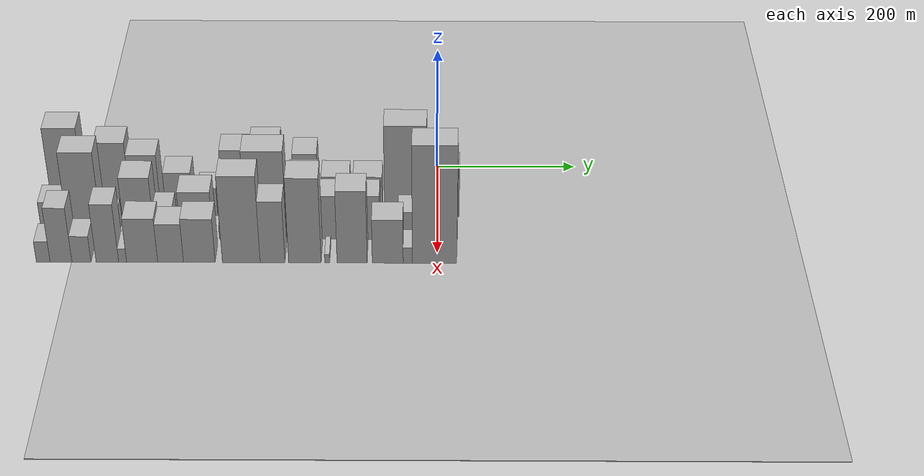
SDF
<sdf version="1.6">
 <world name="default">
  <include><name>ground_plane_1</name><uri>model://HANNAS_ground_plane</uri></include>
  <include>
   <name>ground_plane_2</name>
   <uri>model://HANNAS_ground_plane</uri>
   <pose>100 0 0  0 0 0</pose>
  </include>
  <model name="building_1">
   <static>1</static>
   <pose>100.0000 -517.8129 0 0.000000 0.000000 0.000000</pose>
   <link name="link">
    <pose>0 0 75.00 0 0 0</pose>
    <collision name="collision"><geometry><box><size>40.0000 46.3742 150.0000</size></box></geometry></collision>
    <visual name="visual">
     <cast_shadows>0</cast_shadows>
     <geometry><box><size>40.0000 46.3742 150.0000</size></box></geometry>
     <material>
      <script>
       <uri>model://HANNAS_wall/materials/scripts</uri>
       <uri>model://HANNAS_wall/materials/textures</uri>
       <name>vrc/HANNAS_wall</name>
      </script>
     </material>
    </visual>
   </link>
  </model>
  <model name="building_2">
   <static>1</static>
   <pose>100.0000 -488.5571 0 0.000000 0.000000 0.000000</pose>
   <link name="link">
    <pose>0 0 13.50 0 0 0</pose>
    <collision name="collision"><geometry><box><size>40.0000 12.1373 27.0000</size></box></geometry></collision>
    <visual name="visual">
     <cast_shadows>0</cast_shadows>
     <geometry><box><size>40.0000 12.1373 27.0000</size></box></geometry>
     <material>
      <script>
       <uri>model://HANNAS_wall/materials/scripts</uri>
       <uri>model://HANNAS_wall/materials/textures</uri>
       <name>vrc/HANNAS_wall</name>
      </script>
     </material>
    </visual>
   </link>
  </model>
  <model name="building_3">
   <static>1</static>
   <pose>100.0000 -452.1296 0 0.000000 0.000000 0.000000</pose>
   <link name="link">
    <pose>0 0 63.00 0 0 0</pose>
    <collision name="collision"><geometry><box><size>40.0000 42.7177 126.0000</size></box></geometry></collision>
    <visual name="visual">
     <cast_shadows>0</cast_shadows>
     <geometry><box><size>40.0000 42.7177 126.0000</size></box></geometry>
     <material>
      <script>
       <uri>model://HANNAS_wall/materials/scripts</uri>
       <uri>model://HANNAS_wall/materials/textures</uri>
       <name>vrc/HANNAS_wall</name>
      </script>
     </material>
    </visual>
   </link>
  </model>
  <model name="building_4">
   <static>1</static>
   <pose>100.0000 -409.7963 0 0.000000 0.000000 0.000000</pose>
   <link name="link">
    <pose>0 0 52.50 0 0 0</pose>
    <collision name="collision"><geometry><box><size>40.0000 41.9489 105.0000</size></box></geometry></collision>
    <visual name="visual">
     <cast_shadows>0</cast_shadows>
     <geometry><box><size>40.0000 41.9489 105.0000</size></box></geometry>
     <material>
      <script>
       <uri>model://HANNAS_wall/materials/scripts</uri>
       <uri>model://HANNAS_wall/materials/textures</uri>
       <name>vrc/HANNAS_wall</name>
      </script>
     </material>
    </visual>
   </link>
  </model>
  <model name="building_5">
   <static>1</static>
   <pose>100.0000 -362.7776 0 0.000000 0.000000 0.000000</pose>
   <link name="link">
    <pose>0 0 37.50 0 0 0</pose>
    <collision name="collision"><geometry><box><size>40.0000 38.0886 75.0000</size></box></geometry></collision>
    <visual name="visual">
     <cast_shadows>0</cast_shadows>
     <geometry><box><size>40.0000 38.0886 75.0000</size></box></geometry>
     <material>
      <script>
       <uri>model://HANNAS_wall/materials/scripts</uri>
       <uri>model://HANNAS_wall/materials/textures</uri>
       <name>vrc/HANNAS_wall</name>
      </script>
     </material>
    </visual>
   </link>
  </model>
  <model name="building_6">
   <static>1</static>
   <pose>100.0000 -322.4635 0 0.000000 0.000000 0.000000</pose>
   <link name="link">
    <pose>0 0 24.00 0 0 0</pose>
    <collision name="collision"><geometry><box><size>40.0000 26.5395 48.0000</size></box></geometry></collision>
    <visual name="visual">
     <cast_shadows>0</cast_shadows>
     <geometry><box><size>40.0000 26.5395 48.0000</size></box></geometry>
     <material>
      <script>
       <uri>model://HANNAS_wall/materials/scripts</uri>
       <uri>model://HANNAS_wall/materials/textures</uri>
       <name>vrc/HANNAS_wall</name>
      </script>
     </material>
    </visual>
   </link>
  </model>
  <model name="building_7">
   <static>1</static>
   <pose>100.0000 -280.0874 0 0.000000 0.000000 0.000000</pose>
   <link name="link">
    <pose>0 0 57.00 0 0 0</pose>
    <collision name="collision"><geometry><box><size>40.0000 42.2128 114.0000</size></box></geometry></collision>
    <visual name="visual">
     <cast_shadows>0</cast_shadows>
     <geometry><box><size>40.0000 42.2128 114.0000</size></box></geometry>
     <material>
      <script>
       <uri>model://HANNAS_wall/materials/scripts</uri>
       <uri>model://HANNAS_wall/materials/textures</uri>
       <name>vrc/HANNAS_wall</name>
      </script>
     </material>
    </visual>
   </link>
  </model>
  <model name="building_8">
   <static>1</static>
   <pose>100.0000 -238.3081 0 0.000000 0.000000 0.000000</pose>
   <link name="link">
    <pose>0 0 63.00 0 0 0</pose>
    <collision name="collision"><geometry><box><size>40.0000 41.3457 126.0000</size></box></geometry></collision>
    <visual name="visual">
     <cast_shadows>0</cast_shadows>
     <geometry><box><size>40.0000 41.3457 126.0000</size></box></geometry>
     <material>
      <script>
       <uri>model://HANNAS_wall/materials/scripts</uri>
       <uri>model://HANNAS_wall/materials/textures</uri>
       <name>vrc/HANNAS_wall</name>
      </script>
     </material>
    </visual>
   </link>
  </model>
  <model name="building_9">
   <static>1</static>
   <pose>100.0000 -210.3864 0 0.000000 0.000000 0.000000</pose>
   <link name="link">
    <pose>0 0 9.00 0 0 0</pose>
    <collision name="collision"><geometry><box><size>40.0000 8.4978 18.0000</size></box></geometry></collision>
    <visual name="visual">
     <cast_shadows>0</cast_shadows>
     <geometry><box><size>40.0000 8.4978 18.0000</size></box></geometry>
     <material>
      <script>
       <uri>model://HANNAS_wall/materials/scripts</uri>
       <uri>model://HANNAS_wall/materials/textures</uri>
       <name>vrc/HANNAS_wall</name>
      </script>
     </material>
    </visual>
   </link>
  </model>
  <model name="building_10">
   <static>1</static>
   <pose>100.0000 -184.0744 0 0.000000 0.000000 0.000000</pose>
   <link name="link">
    <pose>0 0 54.00 0 0 0</pose>
    <collision name="collision"><geometry><box><size>40.0000 34.1261 108.0000</size></box></geometry></collision>
    <visual name="visual">
     <cast_shadows>0</cast_shadows>
     <geometry><box><size>40.0000 34.1261 108.0000</size></box></geometry>
     <material>
      <script>
       <uri>model://HANNAS_wall/materials/scripts</uri>
       <uri>model://HANNAS_wall/materials/textures</uri>
       <name>vrc/HANNAS_wall</name>
      </script>
     </material>
    </visual>
   </link>
  </model>
  <model name="building_11">
   <static>1</static>
   <pose>100.0000 -142.2637 0 0.000000 0.000000 0.000000</pose>
   <link name="link">
    <pose>0 0 34.50 0 0 0</pose>
    <collision name="collision"><geometry><box><size>40.0000 39.4953 69.0000</size></box></geometry></collision>
    <visual name="visual">
     <cast_shadows>0</cast_shadows>
     <geometry><box><size>40.0000 39.4953 69.0000</size></box></geometry>
     <material>
      <script>
       <uri>model://HANNAS_wall/materials/scripts</uri>
       <uri>model://HANNAS_wall/materials/textures</uri>
       <name>vrc/HANNAS_wall</name>
      </script>
     </material>
    </visual>
   </link>
  </model>
  <model name="building_12">
   <static>1</static>
   <pose>100.0000 -97.3337 0 0.000000 0.000000 0.000000</pose>
   <link name="link">
    <pose>0 0 34.50 0 0 0</pose>
    <collision name="collision"><geometry><box><size>40.0000 40.3648 69.0000</size></box></geometry></collision>
    <visual name="visual">
     <cast_shadows>0</cast_shadows>
     <geometry><box><size>40.0000 40.3648 69.0000</size></box></geometry>
     <material>
      <script>
       <uri>model://HANNAS_wall/materials/scripts</uri>
       <uri>model://HANNAS_wall/materials/textures</uri>
       <name>vrc/HANNAS_wall</name>
      </script>
     </material>
    </visual>
   </link>
  </model>
  <model name="building_13">
   <static>1</static>
   <pose>100.0000 -44.5893 0 0.000000 0.000000 0.000000</pose>
   <link name="link">
    <pose>0 0 78.00 0 0 0</pose>
    <collision name="collision"><geometry><box><size>40.0000 59.1241 156.0000</size></box></geometry></collision>
    <visual name="visual">
     <cast_shadows>0</cast_shadows>
     <geometry><box><size>40.0000 59.1241 156.0000</size></box></geometry>
     <material>
      <script>
       <uri>model://HANNAS_wall/materials/scripts</uri>
       <uri>model://HANNAS_wall/materials/textures</uri>
       <name>vrc/HANNAS_wall</name>
      </script>
     </material>
    </visual>
   </link>
  </model>
  <model name="building_14">
   <static>1</static>
   <pose>100.0000 7.8400 0 0.000000 0.000000 0.000000</pose>
   <link name="link">
    <pose>0 0 42.00 0 0 0</pose>
    <collision name="collision"><geometry><box><size>40.0000 45.7345 84.0000</size></box></geometry></collision>
    <visual name="visual">
     <cast_shadows>0</cast_shadows>
     <geometry><box><size>40.0000 45.7345 84.0000</size></box></geometry>
     <material>
      <script>
       <uri>model://HANNAS_wall/materials/scripts</uri>
       <uri>model://HANNAS_wall/materials/textures</uri>
       <name>vrc/HANNAS_wall</name>
      </script>
     </material>
    </visual>
   </link>
  </model>
  <model name="building_31">
   <static>1</static>
   <pose>152.0000 -529.8359 0 0.000000 0.000000 0.000000</pose>
   <link name="link">
    <pose>0 0 31.50 0 0 0</pose>
    <collision name="collision"><geometry><box><size>40.0000 36.3281 63.0000</size></box></geometry></collision>
    <visual name="visual">
     <cast_shadows>0</cast_shadows>
     <geometry><box><size>40.0000 36.3281 63.0000</size></box></geometry>
     <material>
      <script>
       <uri>model://HANNAS_wall/materials/scripts</uri>
       <uri>model://HANNAS_wall/materials/textures</uri>
       <name>vrc/HANNAS_wall</name>
      </script>
     </material>
    </visual>
   </link>
  </model>
  <model name="building_32">
   <static>1</static>
   <pose>152.0000 -488.1662 0 0.000000 0.000000 0.000000</pose>
   <link name="link">
    <pose>0 0 73.50 0 0 0</pose>
    <collision name="collision"><geometry><box><size>40.0000 47.0113 147.0000</size></box></geometry></collision>
    <visual name="visual">
     <cast_shadows>0</cast_shadows>
     <geometry><box><size>40.0000 47.0113 147.0000</size></box></geometry>
     <material>
      <script>
       <uri>model://HANNAS_wall/materials/scripts</uri>
       <uri>model://HANNAS_wall/materials/textures</uri>
       <name>vrc/HANNAS_wall</name>
      </script>
     </material>
    </visual>
   </link>
  </model>
  <model name="building_33">
   <static>1</static>
   <pose>152.0000 -453.7050 0 0.000000 0.000000 0.000000</pose>
   <link name="link">
    <pose>0 0 19.50 0 0 0</pose>
    <collision name="collision"><geometry><box><size>40.0000 21.9111 39.0000</size></box></geometry></collision>
    <visual name="visual">
     <cast_shadows>0</cast_shadows>
     <geometry><box><size>40.0000 21.9111 39.0000</size></box></geometry>
     <material>
      <script>
       <uri>model://HANNAS_wall/materials/scripts</uri>
       <uri>model://HANNAS_wall/materials/textures</uri>
       <name>vrc/HANNAS_wall</name>
      </script>
     </material>
    </visual>
   </link>
  </model>
  <model name="building_34">
   <static>1</static>
   <pose>152.0000 -413.0105 0 0.000000 0.000000 0.000000</pose>
   <link name="link">
    <pose>0 0 52.50 0 0 0</pose>
    <collision name="collision"><geometry><box><size>40.0000 41.4778 105.0000</size></box></geometry></collision>
    <visual name="visual">
     <cast_shadows>0</cast_shadows>
     <geometry><box><size>40.0000 41.4778 105.0000</size></box></geometry>
     <material>
      <script>
       <uri>model://HANNAS_wall/materials/scripts</uri>
       <uri>model://HANNAS_wall/materials/textures</uri>
       <name>vrc/HANNAS_wall</name>
      </script>
     </material>
    </visual>
   </link>
  </model>
  <model name="building_35">
   <static>1</static>
   <pose>152.0000 -378.6980 0 0.000000 0.000000 0.000000</pose>
   <link name="link">
    <pose>0 0 25.50 0 0 0</pose>
    <collision name="collision"><geometry><box><size>40.0000 27.1472 51.0000</size></box></geometry></collision>
    <visual name="visual">
     <cast_shadows>0</cast_shadows>
     <geometry><box><size>40.0000 27.1472 51.0000</size></box></geometry>
     <material>
      <script>
       <uri>model://HANNAS_wall/materials/scripts</uri>
       <uri>model://HANNAS_wall/materials/textures</uri>
       <name>vrc/HANNAS_wall</name>
      </script>
     </material>
    </visual>
   </link>
  </model>
  <model name="building_36">
   <static>1</static>
   <pose>152.0000 -333.7267 0 0.000000 0.000000 0.000000</pose>
   <link name="link">
    <pose>0 0 40.50 0 0 0</pose>
    <collision name="collision"><geometry><box><size>40.0000 44.7954 81.0000</size></box></geometry></collision>
    <visual name="visual">
     <cast_shadows>0</cast_shadows>
     <geometry><box><size>40.0000 44.7954 81.0000</size></box></geometry>
     <material>
      <script>
       <uri>model://HANNAS_wall/materials/scripts</uri>
       <uri>model://HANNAS_wall/materials/textures</uri>
       <name>vrc/HANNAS_wall</name>
      </script>
     </material>
    </visual>
   </link>
  </model>
  <model name="building_37">
   <static>1</static>
   <pose>152.0000 -297.2782 0 0.000000 0.000000 0.000000</pose>
   <link name="link">
    <pose>0 0 12.00 0 0 0</pose>
    <collision name="collision"><geometry><box><size>40.0000 10.1018 24.0000</size></box></geometry></collision>
    <visual name="visual">
     <cast_shadows>0</cast_shadows>
     <geometry><box><size>40.0000 10.1018 24.0000</size></box></geometry>
     <material>
      <script>
       <uri>model://HANNAS_wall/materials/scripts</uri>
       <uri>model://HANNAS_wall/materials/textures</uri>
       <name>vrc/HANNAS_wall</name>
      </script>
     </material>
    </visual>
   </link>
  </model>
  <model name="building_38">
   <static>1</static>
   <pose>152.0000 -284.5666 0 0.000000 0.000000 0.000000</pose>
   <link name="link">
    <pose>0 0 15.00 0 0 0</pose>
    <collision name="collision"><geometry><box><size>40.0000 15.3213 30.0000</size></box></geometry></collision>
    <visual name="visual">
     <cast_shadows>0</cast_shadows>
     <geometry><box><size>40.0000 15.3213 30.0000</size></box></geometry>
     <material>
      <script>
       <uri>model://HANNAS_wall/materials/scripts</uri>
       <uri>model://HANNAS_wall/materials/textures</uri>
       <name>vrc/HANNAS_wall</name>
      </script>
     </material>
    </visual>
   </link>
  </model>
  <model name="building_39">
   <static>1</static>
   <pose>152.0000 -271.1586 0 0.000000 0.000000 0.000000</pose>
   <link name="link">
    <pose>0 0 12.00 0 0 0</pose>
    <collision name="collision"><geometry><box><size>40.0000 11.4947 24.0000</size></box></geometry></collision>
    <visual name="visual">
     <cast_shadows>0</cast_shadows>
     <geometry><box><size>40.0000 11.4947 24.0000</size></box></geometry>
     <material>
      <script>
       <uri>model://HANNAS_wall/materials/scripts</uri>
       <uri>model://HANNAS_wall/materials/textures</uri>
       <name>vrc/HANNAS_wall</name>
      </script>
     </material>
    </visual>
   </link>
  </model>
  <model name="building_40">
   <static>1</static>
   <pose>152.0000 -237.2318 0 0.000000 0.000000 0.000000</pose>
   <link name="link">
    <pose>0 0 75.00 0 0 0</pose>
    <collision name="collision"><geometry><box><size>40.0000 56.3590 150.0000</size></box></geometry></collision>
    <visual name="visual">
     <cast_shadows>0</cast_shadows>
     <geometry><box><size>40.0000 56.3590 150.0000</size></box></geometry>
     <material>
      <script>
       <uri>model://HANNAS_wall/materials/scripts</uri>
       <uri>model://HANNAS_wall/materials/textures</uri>
       <name>vrc/HANNAS_wall</name>
      </script>
     </material>
    </visual>
   </link>
  </model>
  <model name="building_41">
   <static>1</static>
   <pose>152.0000 -183.8900 0 0.000000 0.000000 0.000000</pose>
   <link name="link">
    <pose>0 0 54.00 0 0 0</pose>
    <collision name="collision"><geometry><box><size>40.0000 38.3245 108.0000</size></box></geometry></collision>
    <visual name="visual">
     <cast_shadows>0</cast_shadows>
     <geometry><box><size>40.0000 38.3245 108.0000</size></box></geometry>
     <material>
      <script>
       <uri>model://HANNAS_wall/materials/scripts</uri>
       <uri>model://HANNAS_wall/materials/textures</uri>
       <name>vrc/HANNAS_wall</name>
      </script>
     </material>
    </visual>
   </link>
  </model>
  <model name="building_42">
   <static>1</static>
   <pose>152.0000 -144.3344 0 0.000000 0.000000 0.000000</pose>
   <link name="link">
    <pose>0 0 37.50 0 0 0</pose>
    <collision name="collision"><geometry><box><size>40.0000 40.7866 75.0000</size></box></geometry></collision>
    <visual name="visual">
     <cast_shadows>0</cast_shadows>
     <geometry><box><size>40.0000 40.7866 75.0000</size></box></geometry>
     <material>
      <script>
       <uri>model://HANNAS_wall/materials/scripts</uri>
       <uri>model://HANNAS_wall/materials/textures</uri>
       <name>vrc/HANNAS_wall</name>
      </script>
     </material>
    </visual>
   </link>
  </model>
  <model name="building_43">
   <static>1</static>
   <pose>152.0000 -101.8310 0 0.000000 0.000000 0.000000</pose>
   <link name="link">
    <pose>0 0 37.50 0 0 0</pose>
    <collision name="collision"><geometry><box><size>40.0000 44.2203 75.0000</size></box></geometry></collision>
    <visual name="visual">
     <cast_shadows>0</cast_shadows>
     <geometry><box><size>40.0000 44.2203 75.0000</size></box></geometry>
     <material>
      <script>
       <uri>model://HANNAS_wall/materials/scripts</uri>
       <uri>model://HANNAS_wall/materials/textures</uri>
       <name>vrc/HANNAS_wall</name>
      </script>
     </material>
    </visual>
   </link>
  </model>
  <model name="building_44">
   <static>1</static>
   <pose>152.0000 -75.3152 0 0.000000 0.000000 0.000000</pose>
   <link name="link">
    <pose>0 0 9.00 0 0 0</pose>
    <collision name="collision"><geometry><box><size>40.0000 8.8113 18.0000</size></box></geometry></collision>
    <visual name="visual">
     <cast_shadows>0</cast_shadows>
     <geometry><box><size>40.0000 8.8113 18.0000</size></box></geometry>
     <material>
      <script>
       <uri>model://HANNAS_wall/materials/scripts</uri>
       <uri>model://HANNAS_wall/materials/textures</uri>
       <name>vrc/HANNAS_wall</name>
      </script>
     </material>
    </visual>
   </link>
  </model>
  <model name="building_45">
   <static>1</static>
   <pose>152.0000 -62.4383 0 0.000000 0.000000 0.000000</pose>
   <link name="link">
    <pose>0 0 15.00 0 0 0</pose>
    <collision name="collision"><geometry><box><size>40.0000 16.9426 30.0000</size></box></geometry></collision>
    <visual name="visual">
     <cast_shadows>0</cast_shadows>
     <geometry><box><size>40.0000 16.9426 30.0000</size></box></geometry>
     <material>
      <script>
       <uri>model://HANNAS_wall/materials/scripts</uri>
       <uri>model://HANNAS_wall/materials/textures</uri>
       <name>vrc/HANNAS_wall</name>
      </script>
     </material>
    </visual>
   </link>
  </model>
  <model name="building_46">
   <static>1</static>
   <pose>152.0000 -41.3416 0 0.000000 0.000000 0.000000</pose>
   <link name="link">
    <pose>0 0 24.00 0 0 0</pose>
    <collision name="collision"><geometry><box><size>40.0000 25.2507 48.0000</size></box></geometry></collision>
    <visual name="visual">
     <cast_shadows>0</cast_shadows>
     <geometry><box><size>40.0000 25.2507 48.0000</size></box></geometry>
     <material>
      <script>
       <uri>model://HANNAS_wall/materials/scripts</uri>
       <uri>model://HANNAS_wall/materials/textures</uri>
       <name>vrc/HANNAS_wall</name>
      </script>
     </material>
    </visual>
   </link>
  </model>
  <model name="building_47">
   <static>1</static>
   <pose>152.0000 -22.3486 0 0.000000 0.000000 0.000000</pose>
   <link name="link">
    <pose>0 0 13.50 0 0 0</pose>
    <collision name="collision"><geometry><box><size>40.0000 12.7354 27.0000</size></box></geometry></collision>
    <visual name="visual">
     <cast_shadows>0</cast_shadows>
     <geometry><box><size>40.0000 12.7354 27.0000</size></box></geometry>
     <material>
      <script>
       <uri>model://HANNAS_wall/materials/scripts</uri>
       <uri>model://HANNAS_wall/materials/textures</uri>
       <name>vrc/HANNAS_wall</name>
      </script>
     </material>
    </visual>
   </link>
  </model>
  <model name="building_48">
   <static>1</static>
   <pose>152.0000 5.9794 0 0.000000 0.000000 0.000000</pose>
   <link name="link">
    <pose>0 0 69.00 0 0 0</pose>
    <collision name="collision"><geometry><box><size>40.0000 43.9205 138.0000</size></box></geometry></collision>
    <visual name="visual">
     <cast_shadows>0</cast_shadows>
     <geometry><box><size>40.0000 43.9205 138.0000</size></box></geometry>
     <material>
      <script>
       <uri>model://HANNAS_wall/materials/scripts</uri>
       <uri>model://HANNAS_wall/materials/textures</uri>
       <name>vrc/HANNAS_wall</name>
      </script>
     </material>
    </visual>
   </link>
  </model>
  <model name="building_65">
   <static>1</static>
   <pose>204.0000 -538.6336 0 0.000000 0.000000 0.000000</pose>
   <link name="link">
    <pose>0 0 18.00 0 0 0</pose>
    <collision name="collision"><geometry><box><size>40.0000 18.7327 36.0000</size></box></geometry></collision>
    <visual name="visual">
     <cast_shadows>0</cast_shadows>
     <geometry><box><size>40.0000 18.7327 36.0000</size></box></geometry>
     <material>
      <script>
       <uri>model://HANNAS_wall/materials/scripts</uri>
       <uri>model://HANNAS_wall/materials/textures</uri>
       <name>vrc/HANNAS_wall</name>
      </script>
     </material>
    </visual>
   </link>
  </model>
  <model name="building_66">
   <static>1</static>
   <pose>204.0000 -514.2929 0 0.000000 0.000000 0.000000</pose>
   <link name="link">
    <pose>0 0 46.50 0 0 0</pose>
    <collision name="collision"><geometry><box><size>40.0000 29.9488 93.0000</size></box></geometry></collision>
    <visual name="visual">
     <cast_shadows>0</cast_shadows>
     <geometry><box><size>40.0000 29.9488 93.0000</size></box></geometry>
     <material>
      <script>
       <uri>model://HANNAS_wall/materials/scripts</uri>
       <uri>model://HANNAS_wall/materials/textures</uri>
       <name>vrc/HANNAS_wall</name>
      </script>
     </material>
    </visual>
   </link>
  </model>
  <model name="building_67">
   <static>1</static>
   <pose>204.0000 -486.3015 0 0.000000 0.000000 0.000000</pose>
   <link name="link">
    <pose>0 0 22.50 0 0 0</pose>
    <collision name="collision"><geometry><box><size>40.0000 26.0339 45.0000</size></box></geometry></collision>
    <visual name="visual">
     <cast_shadows>0</cast_shadows>
     <geometry><box><size>40.0000 26.0339 45.0000</size></box></geometry>
     <material>
      <script>
       <uri>model://HANNAS_wall/materials/scripts</uri>
       <uri>model://HANNAS_wall/materials/textures</uri>
       <name>vrc/HANNAS_wall</name>
      </script>
     </material>
    </visual>
   </link>
  </model>
  <model name="building_68">
   <static>1</static>
   <pose>204.0000 -450.8582 0 0.000000 0.000000 0.000000</pose>
   <link name="link">
    <pose>0 0 49.50 0 0 0</pose>
    <collision name="collision"><geometry><box><size>40.0000 30.8527 99.0000</size></box></geometry></collision>
    <visual name="visual">
     <cast_shadows>0</cast_shadows>
     <geometry><box><size>40.0000 30.8527 99.0000</size></box></geometry>
     <material>
      <script>
       <uri>model://HANNAS_wall/materials/scripts</uri>
       <uri>model://HANNAS_wall/materials/textures</uri>
       <name>vrc/HANNAS_wall</name>
      </script>
     </material>
    </visual>
   </link>
  </model>
  <model name="building_69">
   <static>1</static>
   <pose>204.0000 -430.0447 0 0.000000 0.000000 0.000000</pose>
   <link name="link">
    <pose>0 0 12.00 0 0 0</pose>
    <collision name="collision"><geometry><box><size>40.0000 10.7745 24.0000</size></box></geometry></collision>
    <visual name="visual">
     <cast_shadows>0</cast_shadows>
     <geometry><box><size>40.0000 10.7745 24.0000</size></box></geometry>
     <material>
      <script>
       <uri>model://HANNAS_wall/materials/scripts</uri>
       <uri>model://HANNAS_wall/materials/textures</uri>
       <name>vrc/HANNAS_wall</name>
      </script>
     </material>
    </visual>
   </link>
  </model>
  <model name="building_70">
   <static>1</static>
   <pose>204.0000 -403.3972 0 0.000000 0.000000 0.000000</pose>
   <link name="link">
    <pose>0 0 37.50 0 0 0</pose>
    <collision name="collision"><geometry><box><size>40.0000 42.5203 75.0000</size></box></geometry></collision>
    <visual name="visual">
     <cast_shadows>0</cast_shadows>
     <geometry><box><size>40.0000 42.5203 75.0000</size></box></geometry>
     <material>
      <script>
       <uri>model://HANNAS_wall/materials/scripts</uri>
       <uri>model://HANNAS_wall/materials/textures</uri>
       <name>vrc/HANNAS_wall</name>
      </script>
     </material>
    </visual>
   </link>
  </model>
  <model name="building_71">
   <static>1</static>
   <pose>204.0000 -364.4743 0 0.000000 0.000000 0.000000</pose>
   <link name="link">
    <pose>0 0 33.00 0 0 0</pose>
    <collision name="collision"><geometry><box><size>40.0000 35.3255 66.0000</size></box></geometry></collision>
    <visual name="visual">
     <cast_shadows>0</cast_shadows>
     <geometry><box><size>40.0000 35.3255 66.0000</size></box></geometry>
     <material>
      <script>
       <uri>model://HANNAS_wall/materials/scripts</uri>
       <uri>model://HANNAS_wall/materials/textures</uri>
       <name>vrc/HANNAS_wall</name>
      </script>
     </material>
    </visual>
   </link>
  </model>
  <model name="building_72">
   <static>1</static>
   <pose>204.0000 -325.2213 0 0.000000 0.000000 0.000000</pose>
   <link name="link">
    <pose>0 0 37.50 0 0 0</pose>
    <collision name="collision"><geometry><box><size>40.0000 43.1806 75.0000</size></box></geometry></collision>
    <visual name="visual">
     <cast_shadows>0</cast_shadows>
     <geometry><box><size>40.0000 43.1806 75.0000</size></box></geometry>
     <material>
      <script>
       <uri>model://HANNAS_wall/materials/scripts</uri>
       <uri>model://HANNAS_wall/materials/textures</uri>
       <name>vrc/HANNAS_wall</name>
      </script>
     </material>
    </visual>
   </link>
  </model>
  <model name="building_73">
   <static>1</static>
   <pose>204.0000 -267.8772 0 0.000000 0.000000 0.000000</pose>
   <link name="link">
    <pose>0 0 73.50 0 0 0</pose>
    <collision name="collision"><geometry><box><size>40.0000 51.5077 147.0000</size></box></geometry></collision>
    <visual name="visual">
     <cast_shadows>0</cast_shadows>
     <geometry><box><size>40.0000 51.5077 147.0000</size></box></geometry>
     <material>
      <script>
       <uri>model://HANNAS_wall/materials/scripts</uri>
       <uri>model://HANNAS_wall/materials/textures</uri>
       <name>vrc/HANNAS_wall</name>
      </script>
     </material>
    </visual>
   </link>
  </model>
  <model name="building_74">
   <static>1</static>
   <pose>204.0000 -225.1672 0 0.000000 0.000000 0.000000</pose>
   <link name="link">
    <pose>0 0 52.50 0 0 0</pose>
    <collision name="collision"><geometry><box><size>40.0000 33.9124 105.0000</size></box></geometry></collision>
    <visual name="visual">
     <cast_shadows>0</cast_shadows>
     <geometry><box><size>40.0000 33.9124 105.0000</size></box></geometry>
     <material>
      <script>
       <uri>model://HANNAS_wall/materials/scripts</uri>
       <uri>model://HANNAS_wall/materials/textures</uri>
       <name>vrc/HANNAS_wall</name>
      </script>
     </material>
    </visual>
   </link>
  </model>
  <model name="building_75">
   <static>1</static>
   <pose>204.0000 -181.0042 0 0.000000 0.000000 0.000000</pose>
   <link name="link">
    <pose>0 0 72.00 0 0 0</pose>
    <collision name="collision"><geometry><box><size>40.0000 44.4136 144.0000</size></box></geometry></collision>
    <visual name="visual">
     <cast_shadows>0</cast_shadows>
     <geometry><box><size>40.0000 44.4136 144.0000</size></box></geometry>
     <material>
      <script>
       <uri>model://HANNAS_wall/materials/scripts</uri>
       <uri>model://HANNAS_wall/materials/textures</uri>
       <name>vrc/HANNAS_wall</name>
      </script>
     </material>
    </visual>
   </link>
  </model>
  <model name="building_76">
   <static>1</static>
   <pose>204.0000 -150.4200 0 0.000000 0.000000 0.000000</pose>
   <link name="link">
    <pose>0 0 7.50 0 0 0</pose>
    <collision name="collision"><geometry><box><size>40.0000 6.7547 15.0000</size></box></geometry></collision>
    <visual name="visual">
     <cast_shadows>0</cast_shadows>
     <geometry><box><size>40.0000 6.7547 15.0000</size></box></geometry>
     <material>
      <script>
       <uri>model://HANNAS_wall/materials/scripts</uri>
       <uri>model://HANNAS_wall/materials/textures</uri>
       <name>vrc/HANNAS_wall</name>
      </script>
     </material>
    </visual>
   </link>
  </model>
  <model name="building_77">
   <static>1</static>
   <pose>204.0000 -116.4922 0 0.000000 0.000000 0.000000</pose>
   <link name="link">
    <pose>0 0 61.50 0 0 0</pose>
    <collision name="collision"><geometry><box><size>40.0000 41.1009 123.0000</size></box></geometry></collision>
    <visual name="visual">
     <cast_shadows>0</cast_shadows>
     <geometry><box><size>40.0000 41.1009 123.0000</size></box></geometry>
     <material>
      <script>
       <uri>model://HANNAS_wall/materials/scripts</uri>
       <uri>model://HANNAS_wall/materials/textures</uri>
       <name>vrc/HANNAS_wall</name>
      </script>
     </material>
    </visual>
   </link>
  </model>
  <model name="building_78">
   <static>1</static>
   <pose>204.0000 -67.8699 0 0.000000 0.000000 0.000000</pose>
   <link name="link">
    <pose>0 0 37.50 0 0 0</pose>
    <collision name="collision"><geometry><box><size>40.0000 42.1438 75.0000</size></box></geometry></collision>
    <visual name="visual">
     <cast_shadows>0</cast_shadows>
     <geometry><box><size>40.0000 42.1438 75.0000</size></box></geometry>
     <material>
      <script>
       <uri>model://HANNAS_wall/materials/scripts</uri>
       <uri>model://HANNAS_wall/materials/textures</uri>
       <name>vrc/HANNAS_wall</name>
      </script>
     </material>
    </visual>
   </link>
  </model>
  <model name="building_79">
   <static>1</static>
   <pose>204.0000 -40.6224 0 0.000000 0.000000 0.000000</pose>
   <link name="link">
    <pose>0 0 13.50 0 0 0</pose>
    <collision name="collision"><geometry><box><size>40.0000 12.3511 27.0000</size></box></geometry></collision>
    <visual name="visual">
     <cast_shadows>0</cast_shadows>
     <geometry><box><size>40.0000 12.3511 27.0000</size></box></geometry>
     <material>
      <script>
       <uri>model://HANNAS_wall/materials/scripts</uri>
       <uri>model://HANNAS_wall/materials/textures</uri>
       <name>vrc/HANNAS_wall</name>
      </script>
     </material>
    </visual>
   </link>
  </model>
  <model name="building_80">
   <static>1</static>
   <pose>204.0000 -4.0908 0 0.000000 0.000000 0.000000</pose>
   <link name="link">
    <pose>0 0 99.00 0 0 0</pose>
    <collision name="collision"><geometry><box><size>40.0000 60.7121 198.0000</size></box></geometry></collision>
    <visual name="visual">
     <cast_shadows>0</cast_shadows>
     <geometry><box><size>40.0000 60.7121 198.0000</size></box></geometry>
     <material>
      <script>
       <uri>model://HANNAS_wall/materials/scripts</uri>
       <uri>model://HANNAS_wall/materials/textures</uri>
       <name>vrc/HANNAS_wall</name>
      </script>
     </material>
    </visual>
   </link>
  </model>
 </world>
</sdf>
